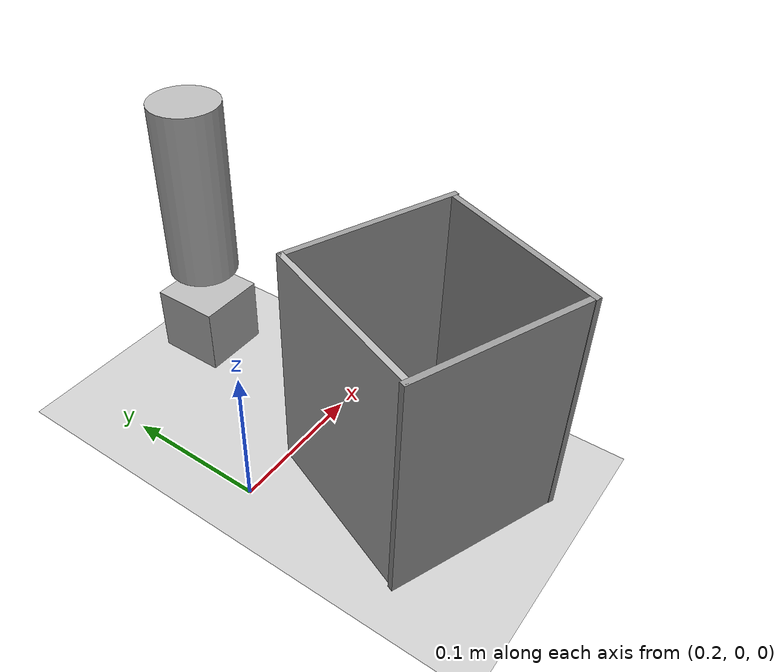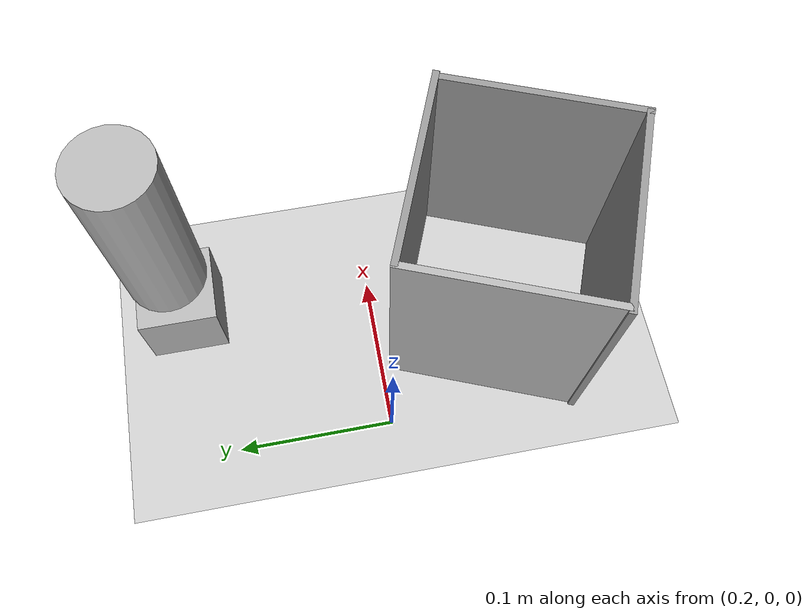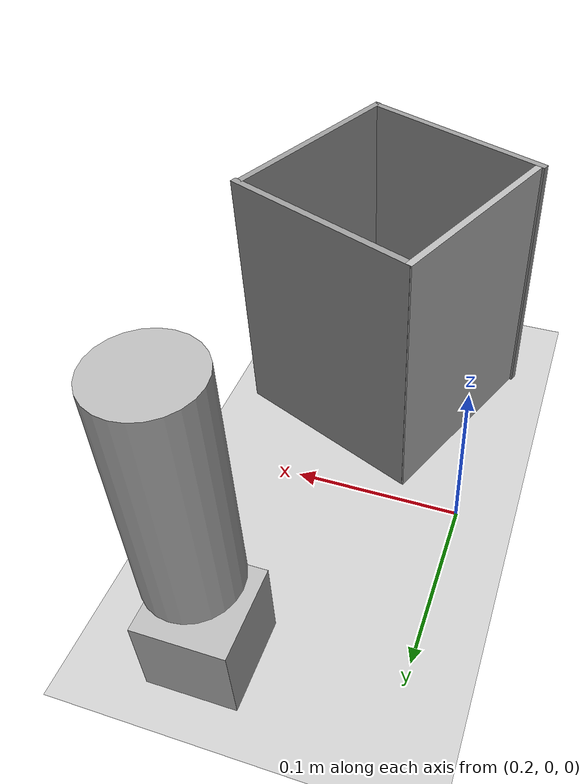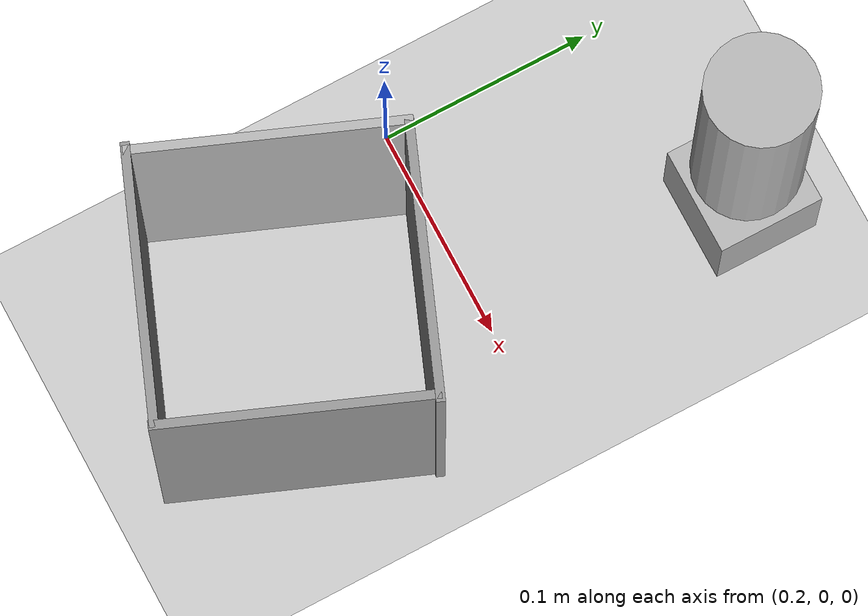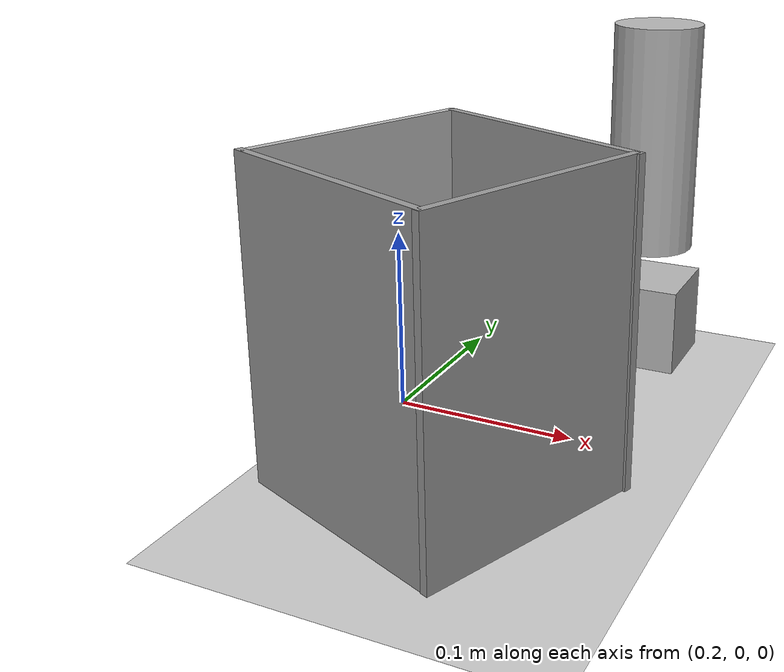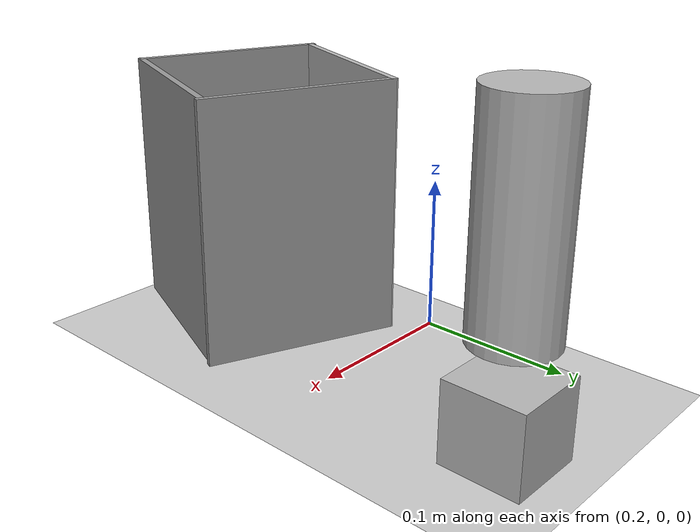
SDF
<sdf version="1.4">
  <world name="default">
    <!-- A global light source -->
    <include>
      <uri>model://sun</uri>
    </include>

    <!-- A ground plane -->
    <include>
      <uri>model://ground_plane</uri>
    </include>

    <physics type="ode">
      <real_time_update_rate>1000.0</real_time_update_rate>
      <max_step_size>0.001</max_step_size>
      <real_time_factor>1</real_time_factor>
      <ode>
        <solver>
          <type>quick</type>
          <iters>150</iters>
          <precon_iters>0</precon_iters>
          <sor>1.400000</sor>
          <use_dynamic_moi_rescaling>1</use_dynamic_moi_rescaling>
        </solver>
        <constraints>
          <cfm>0.00001</cfm>
          <erp>0.2</erp>
          <contact_max_correcting_vel>2000.000000</contact_max_correcting_vel>
          <contact_surface_layer>0.01000</contact_surface_layer>
        </constraints>
      </ode>
    </physics>

    <scene>
      <ambient>0.4 0.4 0.4 1</ambient>
      <background>0.7 0.7 0.7 1</background>
      <shadows>true</shadows>
    </scene>

    <gui fullscreen='0'>
      <camera name='user_camera'>
        <pose> 2.0 -2.0 1.2 0.0 0.275643 2.356190 </pose>
        <view_controller>orbit</view_controller>
      </camera>
    </gui>

    <light name='user_directional_light_0' type='directional'>
      <pose frame=''>-1.161098 -0.156670 0.829320 0.058595 -1.295085 0.040307</pose>
      <diffuse>0.5 0.5 0.5 1</diffuse>
      <specular>0.1 0.1 0.1 1</specular>
      <direction>0.1 0.1 -0.9</direction>
      <attenuation>
        <range>20</range>
        <constant>0.5</constant>
        <linear>0.01</linear>
        <quadratic>0.001</quadratic>
      </attenuation>
      <cast_shadows>1</cast_shadows>
    </light>

    <include>
      <pose frame=''>0.3 0.125 0.07 0 0 0</pose>
      <uri>model://pick_object/beer</uri>
      <static>0</static>
    </include>

    <include>
      <pose frame=''>0.3 0.125 0 0 0 0</pose>
      <uri>model://objectbase</uri>
      <static>1</static>
    </include>

    <include>
      <pose frame=''>0.268810 -0.084509 0.090382 0 0 -0.378485</pose>
      <uri>model://pick_box</uri>
      <static>1</static>
    </include>

  </world>
</sdf>

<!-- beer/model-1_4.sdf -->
<sdf version='1.6'>
  <model name='object0'>
    <link name='link_0'>
      <pose frame=''>0 0 0.065 0 0 0</pose>
      <inertial>
        <mass>0.010</mass>
        <inertia>
          <ixx>4.7583e-005</ixx>
          <ixy>0</ixy>
          <ixz>0</ixz>
          <iyy>4.7583e-005</iyy>
          <iyz>0</iyz>
          <izz>3.1250e-006</izz>
        </inertia>
      </inertial>
      <gravity>1</gravity>
      <self_collide>0</self_collide>
      <kinematic>0</kinematic>
      <visual name='visual'>
        <pose frame=''>0 0 0 0 -0 0</pose>
        <geometry>
          <cylinder>
            <radius>0.025000</radius>
            <length>0.130000</length>
          </cylinder>
        </geometry>
        <material>
          <script>
            <uri>model://beer/materials/scripts</uri>
            <uri>model://beer/materials/textures</uri>
            <name>Beer/Diffuse</name>
          </script>
        </material>
        <cast_shadows>1</cast_shadows>
        <transparency>0</transparency>
      </visual>
      <collision name='collision'>
        <laser_retro>0</laser_retro>
        <max_contacts>10</max_contacts>
        <pose frame=''>0 0 0 0 -0 0</pose>
        <geometry>
          <cylinder>
            <radius>0.025000</radius>
            <length>0.130000</length>
          </cylinder>
        </geometry>
        <surface>
          <friction>
            <ode>
              <mu>1000000.0</mu>
              <mu2>10000.0</mu2>
            </ode>
          </friction>
          <contact>
            <ode>
              <kp>1000000.0</kp>
              <kd>100.0</kd>
              <max_vel>1.0</max_vel>
              <min_depth>0.002</min_depth>
            </ode>
          </contact>
        </surface>
      </collision>
    </link>
    <static>0</static>
    <allow_auto_disable>1</allow_auto_disable>
  </model>
</sdf>

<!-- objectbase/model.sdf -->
<sdf version="1.6">
  <model name="objectbase">
    <static>false</static>
    <link name="link">
      <pose frame=''>0 0 0.025 0 0 0</pose>
      <inertial>
        <mass>0.05</mass>
        <inertia>
          <ixx>1.54166666667e-05</ixx>
          <ixy>0</ixy>
          <ixz>0</ixz>
          <iyy>1.54166666667e-05</iyy>
          <iyz>0</iyz>
          <izz>1e-05</izz>
        </inertia>
      </inertial>
      <collision name="collision">
        <pose>0 0 0 0 0 0</pose>
        <geometry>
          <box>
            <size>0.05 0.05 0.05</size>
          </box>
        </geometry>
        <surface>
          <friction>
            <ode>
              <mu>1000000000.0</mu>
              <mu2>10000000.0</mu2>
            </ode>
          </friction>
          <contact>
            <ode>
              <kp>100.0</kp>
              <kd>100.0</kd>
              <max_vel>1.0</max_vel>
              <min_depth>0.002</min_depth>
            </ode>
          </contact>
        </surface>
      </collision>
      <visual name="visual">
        <pose>0 0 0 0 0 0</pose>
        <geometry>
          <box>
            <size>0.05 0.05 0.05</size>
          </box>
        </geometry>
      </visual>
    </link>
  </model>
</sdf>

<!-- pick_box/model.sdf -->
<sdf version='1.6'>
  <model name='pick_box'>
    <link name='link_0'>
      <pose frame=''>-0.059403 0.000482 -0 0 -0 0</pose>
      <inertial>
        <mass>8.13488e-05</mass>
        <inertia>
          <ixx>2.80125e-07</ixx>
          <ixy>0</ixy>
          <ixz>0</ixz>
          <iyy>1.7813e-07</iyy>
          <iyz>0</iyz>
          <izz>1.02222e-07</izz>
        </inertia>
        <pose frame=''>0 0 0 0 -0 0</pose>
      </inertial>
      <visual name='visual'>
        <pose frame=''>0 0 0 0 -0 0</pose>
        <geometry>
          <box>
            <size>0.004084 0.12273 0.162036</size>
          </box>
        </geometry>
        <material>
          <script>
            <uri>model://pick_box/materials/scripts</uri>
            <uri>model://pick_box/materials/textures</uri>
            <name>pick_box/Diffuse</name>
          </script>
        </material>
        <cast_shadows>1</cast_shadows>
        <transparency>0</transparency>
      </visual>
      <collision name='collision'>
        <laser_retro>0</laser_retro>
        <max_contacts>10</max_contacts>
        <pose frame=''>0 0 0 0 -0 0</pose>
        <geometry>
          <box>
            <size>0.004084 0.12273 0.162036</size>
          </box>
        </geometry>
        <surface>
          <friction>
            <ode>
              <mu>1</mu>
              <mu2>1</mu2>
              <fdir1>0 0 0</fdir1>
              <slip1>0</slip1>
              <slip2>0</slip2>
            </ode>
            <torsional>
              <coefficient>1</coefficient>
              <patch_radius>0</patch_radius>
              <surface_radius>0</surface_radius>
              <use_patch_radius>1</use_patch_radius>
              <ode>
                <slip>0</slip>
              </ode>
            </torsional>
          </friction>
          <bounce>
            <restitution_coefficient>0</restitution_coefficient>
            <threshold>1e+06</threshold>
          </bounce>
          <contact>
            <collide_without_contact>0</collide_without_contact>
            <collide_without_contact_bitmask>1</collide_without_contact_bitmask>
            <collide_bitmask>1</collide_bitmask>
            <ode>
              <soft_cfm>0</soft_cfm>
              <soft_erp>0.2</soft_erp>
              <kp>1e+13</kp>
              <kd>1</kd>
              <max_vel>0.01</max_vel>
              <min_depth>0</min_depth>
            </ode>
            <bullet>
              <split_impulse>1</split_impulse>
              <split_impulse_penetration_threshold>-0.01</split_impulse_penetration_threshold>
              <soft_cfm>0</soft_cfm>
              <soft_erp>0.2</soft_erp>
              <kp>1e+13</kp>
              <kd>1</kd>
            </bullet>
          </contact>
        </surface>
      </collision>
    </link>
    <link name='link_0_clone'>
      <pose frame=''>0.058738 -0.000747 -0 0 -0 0</pose>
      <inertial>
        <mass>8.13488e-05</mass>
        <inertia>
          <ixx>2.80125e-07</ixx>
          <ixy>0</ixy>
          <ixz>0</ixz>
          <iyy>1.7813e-07</iyy>
          <iyz>0</iyz>
          <izz>1.02222e-07</izz>
        </inertia>
        <pose frame=''>0 0 0 0 -0 0</pose>
      </inertial>
      <visual name='visual'>
        <pose frame=''>0 0 0 0 -0 0</pose>
        <geometry>
          <box>
            <size>0.004084 0.12273 0.162036</size>
          </box>
        </geometry>
        <material>
          <lighting>1</lighting>
          <script>
            <uri>file://media/materials/scripts/gazebo.material</uri>
            <name>Gazebo/Grey</name>
          </script>
          <ambient>0.3 0.3 0.3 1</ambient>
          <diffuse>0.7 0.7 0.7 1</diffuse>
          <specular>0.01 0.01 0.01 1</specular>
          <emissive>0 0 0 1</emissive>
          <shader type='pixel'/>
        </material>
        <cast_shadows>1</cast_shadows>
        <transparency>0</transparency>
      </visual>
      <collision name='collision'>
        <laser_retro>0</laser_retro>
        <max_contacts>10</max_contacts>
        <pose frame=''>0 0 0 0 -0 0</pose>
        <geometry>
          <box>
            <size>0.004084 0.12273 0.162036</size>
          </box>
        </geometry>
        <surface>
          <friction>
            <ode>
              <mu>1</mu>
              <mu2>1</mu2>
              <fdir1>0 0 0</fdir1>
              <slip1>0</slip1>
              <slip2>0</slip2>
            </ode>
            <torsional>
              <coefficient>1</coefficient>
              <patch_radius>0</patch_radius>
              <surface_radius>0</surface_radius>
              <use_patch_radius>1</use_patch_radius>
              <ode>
                <slip>0</slip>
              </ode>
            </torsional>
          </friction>
          <bounce>
            <restitution_coefficient>0</restitution_coefficient>
            <threshold>1e+06</threshold>
          </bounce>
          <contact>
            <collide_without_contact>0</collide_without_contact>
            <collide_without_contact_bitmask>1</collide_without_contact_bitmask>
            <collide_bitmask>1</collide_bitmask>
            <ode>
              <soft_cfm>0</soft_cfm>
              <soft_erp>0.2</soft_erp>
              <kp>1e+13</kp>
              <kd>1</kd>
              <max_vel>0.01</max_vel>
              <min_depth>0</min_depth>
            </ode>
            <bullet>
              <split_impulse>1</split_impulse>
              <split_impulse_penetration_threshold>-0.01</split_impulse_penetration_threshold>
              <soft_cfm>0</soft_cfm>
              <soft_erp>0.2</soft_erp>
              <kp>1e+13</kp>
              <kd>1</kd>
            </bullet>
          </contact>
        </surface>
      </collision>
    </link>
    <link name='link_0_clone_0'>
      <pose frame=''>-0.001549 -0.059635 -0 0 -0 1.57</pose>
      <inertial>
        <mass>8.135e-05</mass>
        <inertia>
          <ixx>2.8e-07</ixx>
          <ixy>0</ixy>
          <ixz>0</ixz>
          <iyy>1.8e-07</iyy>
          <iyz>0</iyz>
          <izz>1e-07</izz>
        </inertia>
        <pose frame=''>0 0 0 0 -0 0</pose>
      </inertial>
      <gravity>1</gravity>
      <self_collide>0</self_collide>
      <kinematic>0</kinematic>
      <visual name='visual'>
        <pose frame=''>0 0 0 0 -0 0</pose>
        <geometry>
          <box>
            <size>0.004084 0.12273 0.162036</size>
          </box>
        </geometry>
        <material>
          <lighting>1</lighting>
          <script>
            <uri>file://media/materials/scripts/gazebo.material</uri>
            <name>Gazebo/Grey</name>
          </script>
          <ambient>0.3 0.3 0.3 1</ambient>
          <diffuse>0.7 0.7 0.7 1</diffuse>
          <specular>0.01 0.01 0.01 1</specular>
          <emissive>0 0 0 1</emissive>
          <shader type='vertex'>
            <normal_map>__default__</normal_map>
          </shader>
        </material>
        <cast_shadows>1</cast_shadows>
        <transparency>0</transparency>
      </visual>
      <collision name='collision'>
        <laser_retro>0</laser_retro>
        <max_contacts>10</max_contacts>
        <pose frame=''>0 0 0 0 -0 0</pose>
        <geometry>
          <box>
            <size>0.004084 0.12273 0.162036</size>
          </box>
        </geometry>
        <surface>
          <friction>
            <ode>
              <mu>1</mu>
              <mu2>1</mu2>
              <fdir1>0 0 0</fdir1>
              <slip1>0</slip1>
              <slip2>0</slip2>
            </ode>
            <torsional>
              <coefficient>1</coefficient>
              <patch_radius>0</patch_radius>
              <surface_radius>0</surface_radius>
              <use_patch_radius>1</use_patch_radius>
              <ode>
                <slip>0</slip>
              </ode>
            </torsional>
          </friction>
          <bounce>
            <restitution_coefficient>0</restitution_coefficient>
            <threshold>1e+06</threshold>
          </bounce>
          <contact>
            <collide_without_contact>0</collide_without_contact>
            <collide_without_contact_bitmask>1</collide_without_contact_bitmask>
            <collide_bitmask>1</collide_bitmask>
            <ode>
              <soft_cfm>0</soft_cfm>
              <soft_erp>0.2</soft_erp>
              <kp>1e+13</kp>
              <kd>1</kd>
              <max_vel>0.01</max_vel>
              <min_depth>0</min_depth>
            </ode>
            <bullet>
              <split_impulse>1</split_impulse>
              <split_impulse_penetration_threshold>-0.01</split_impulse_penetration_threshold>
              <soft_cfm>0</soft_cfm>
              <soft_erp>0.2</soft_erp>
              <kp>1e+13</kp>
              <kd>1</kd>
            </bullet>
          </contact>
        </surface>
      </collision>
    </link>
    <link name='link_0_clone_1'>
      <pose frame=''>0.000814 0.059901 -0 0 -0 1.57</pose>
      <inertial>
        <mass>8.135e-05</mass>
        <inertia>
          <ixx>2.8e-07</ixx>
          <ixy>0</ixy>
          <ixz>0</ixz>
          <iyy>1.8e-07</iyy>
          <iyz>0</iyz>
          <izz>1e-07</izz>
        </inertia>
        <pose frame=''>0 0 0 0 -0 0</pose>
      </inertial>
      <gravity>1</gravity>
      <self_collide>0</self_collide>
      <kinematic>0</kinematic>
      <visual name='visual'>
        <pose frame=''>0 0 0 0 -0 0</pose>
        <geometry>
          <box>
            <size>0.004084 0.12273 0.162036</size>
          </box>
        </geometry>
        <material>
          <lighting>1</lighting>
          <script>
            <uri>file://media/materials/scripts/gazebo.material</uri>
            <name>Gazebo/Grey</name>
          </script>
          <ambient>0.3 0.3 0.3 1</ambient>
          <diffuse>0.7 0.7 0.7 1</diffuse>
          <specular>0.01 0.01 0.01 1</specular>
          <emissive>0 0 0 1</emissive>
          <shader type='vertex'>
            <normal_map>__default__</normal_map>
          </shader>
        </material>
        <cast_shadows>1</cast_shadows>
        <transparency>0</transparency>
      </visual>
      <collision name='collision'>
        <laser_retro>0</laser_retro>
        <max_contacts>10</max_contacts>
        <pose frame=''>0 0 0 0 -0 0</pose>
        <geometry>
          <box>
            <size>0.004084 0.12273 0.162036</size>
          </box>
        </geometry>
        <surface>
          <friction>
            <ode>
              <mu>1</mu>
              <mu2>1</mu2>
              <fdir1>0 0 0</fdir1>
              <slip1>0</slip1>
              <slip2>0</slip2>
            </ode>
            <torsional>
              <coefficient>1</coefficient>
              <patch_radius>0</patch_radius>
              <surface_radius>0</surface_radius>
              <use_patch_radius>1</use_patch_radius>
              <ode>
                <slip>0</slip>
              </ode>
            </torsional>
          </friction>
          <bounce>
            <restitution_coefficient>0</restitution_coefficient>
            <threshold>1e+06</threshold>
          </bounce>
          <contact>
            <collide_without_contact>0</collide_without_contact>
            <collide_without_contact_bitmask>1</collide_without_contact_bitmask>
            <collide_bitmask>1</collide_bitmask>
            <ode>
              <soft_cfm>0</soft_cfm>
              <soft_erp>0.2</soft_erp>
              <kp>1e+13</kp>
              <kd>1</kd>
              <max_vel>0.01</max_vel>
              <min_depth>0</min_depth>
            </ode>
            <bullet>
              <split_impulse>1</split_impulse>
              <split_impulse_penetration_threshold>-0.01</split_impulse_penetration_threshold>
              <soft_cfm>0</soft_cfm>
              <soft_erp>0.2</soft_erp>
              <kp>1e+13</kp>
              <kd>1</kd>
            </bullet>
          </contact>
        </surface>
      </collision>
    </link>
    <static>1</static>
    <allow_auto_disable>1</allow_auto_disable>
  </model>
</sdf>
